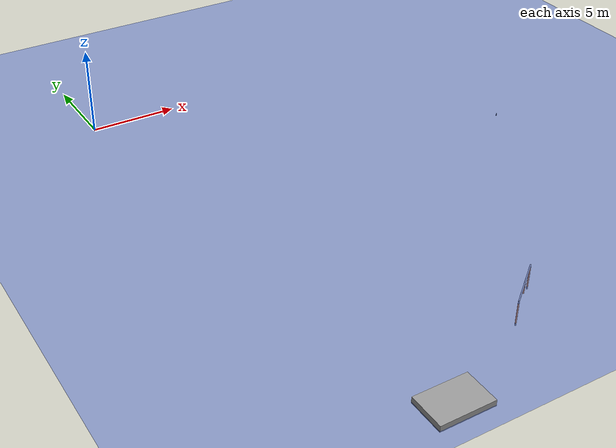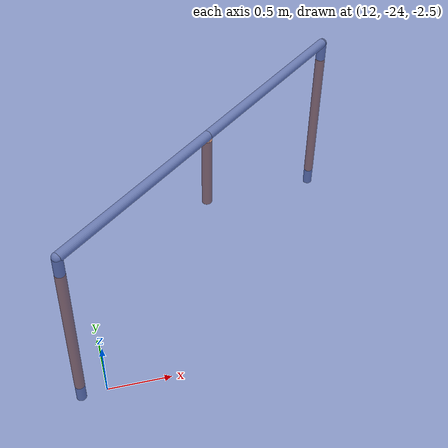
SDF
<sdf version="1.5">
 <world name="default">
  <scene>
   <ambient>0.25 0.3 1 1</ambient>
   <grid>0</grid>
   <background>0.25 0.3 1 1</background>
   <shadows>1</shadows>
  </scene>
  <light type="directional" name="sun0">
   <pose>8 -21 10 0 0.8 -2.8</pose>
   <diffuse>0.8 0.8 0.8 1</diffuse>
   <specular>0.2 0.2 0.2 1</specular>
   <attenuation>
    <range>1000</range>
    <constant>0.9</constant>
    <linear>0.01</linear>
    <quadratic>0.001</quadratic>
   </attenuation>
   <direction>-0.5 0.1 -0.9</direction>
  </light>
  <light type="directional" name="sun1">
   <pose>8 -20 10 0 0.8 0</pose>
   <diffuse>0.8 0.8 0.8 1</diffuse>
   <specular>0.2 0.2 0.2 1</specular>
   <attenuation>
    <range>1000</range>
    <constant>0.9</constant>
    <linear>0.01</linear>
    <quadratic>0.001</quadratic>
   </attenuation>
   <direction>-0.5 0.1 -0.9</direction>
  </light>
  <light type="directional" name="sun2">
   <pose>8 -19 10 0 0 0</pose>
   <diffuse>0.8 0.8 0.8 1</diffuse>
   <specular>0.2 0.2 0.2 1</specular>
   <attenuation>
    <range>1000</range>
    <constant>0.9</constant>
    <linear>0.01</linear>
    <quadratic>0.001</quadratic>
   </attenuation>
   <direction>-0.5 0.1 -0.9</direction>
  </light>
  <light type="directional" name="sun3">
   <pose>8 -19 10 1.75 0 0</pose>
   <diffuse>0.8 0.8 0.8 1</diffuse>
   <specular>0.2 0.2 0.2 1</specular>
   <attenuation>
    <range>1000</range>
    <constant>0.9</constant>
    <linear>0.01</linear>
    <quadratic>0.001</quadratic>
   </attenuation>
   <direction>-0.5 0.1 -0.9</direction>
  </light>
  <light type="directional" name="sun4">
   <pose>8 -19 10 1.75 0 2.9</pose>
   <diffuse>0.8 0.8 0.8 1</diffuse>
   <specular>0.2 0.2 0.2 1</specular>
   <attenuation>
    <range>1000</range>
    <constant>0.9</constant>
    <linear>0.01</linear>
    <quadratic>0.001</quadratic>
   </attenuation>
   <direction>-0.5 0.1 -0.9</direction>
  </light>
  <model name="ceiling_plane">
   <static>true</static>
   <pose>0 0 -0.8 0 0 0</pose>
   <link name="link">
    <visual name="visual">
     <cast_shadows>false</cast_shadows>
     <geometry><box><size>90 60 .001</size></box></geometry>
     <material>
      <script><uri>file://media/materials/scripts/gazebo.material</uri><name>Gazebo/BlueTransparent</name></script>
     </material>
     <transparency>0.6</transparency>
    </visual>
   </link>
  </model>
  <model name="dock_side_a">
   <static>true</static>
   <pose>4.8 -28.0 -0.67 0 0 0</pose>
   <link name="link">
    <collision name="collision"><geometry><box><size>3 2 0.35</size></box></geometry></collision>
    <visual name="visual">
     <geometry><box><size>3 2 0.35</size></box></geometry>
     <material>
      <script><uri>file://media/materials/scripts/gazebo.material</uri><name>Gazebo/Grey</name></script>
     </material>
    </visual>
   </link>
  </model>
  <model name="pinger_a">
   <static>true</static>
   <pose>27.6 -4.1 -4.9 0 0 0</pose>
   <link name="link">
    <visual name="visual">
     <geometry><cylinder><radius>0.03</radius><length>0.15</length></cylinder></geometry>
     <material>
      <script><uri>file://media/materials/scripts/gazebo.material</uri><name>Gazebo/FlatBlack</name></script>
     </material>
    </visual>
   </link>
  </model>
  <include><name>gate_side_a</name><pose>12.4 -23.6 -0.9 0 0 -0.9</pose><uri>model://2018/gate</uri></include>
 </world>
</sdf>

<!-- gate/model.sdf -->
<sdf version='1.6'>
  <model name='gate'>
    <link name='component_rt'>
      <inertial>
        <mass>10</mass>
        <inertia>
          <ixx>0.145833</ixx>
          <ixy>0</ixy>
          <ixz>0</ixz>
          <iyy>0.145833</iyy>
          <iyz>0</iyz>
          <izz>0.125</izz>
        </inertia>
        <pose>0 0 0 0 -0 0</pose>
      </inertial>
      <pose>0 1.52 -0.000146 1.5707 -0 0</pose>
      <self_collide>0</self_collide>
      <enable_wind>0</enable_wind>
      <kinematic>0</kinematic>
      <gravity>0</gravity>
      <visual name='visual'>
        <pose>0 0 0 0 -0 0</pose>
        <geometry>
          <cylinder>
            <radius>0.0381</radius>
            <length>1.52</length>
          </cylinder>
        </geometry>
        <material>
          <lighting>1</lighting>
          <script>
            <uri>file://media/materials/scripts/gazebo.material</uri>
            <name>Gazebo/Grey</name>
          </script>
          <shader type='pixel'/>
          <emissive>0 0 0 1</emissive>
        </material>
        <transparency>0</transparency>
        <cast_shadows>1</cast_shadows>
      </visual>
      <collision name='collision'>
        <laser_retro>0</laser_retro>
        <max_contacts>10</max_contacts>
        <pose>0 0 0 0 -0 0</pose>
        <geometry>
          <cylinder>
            <radius>0.0381</radius>
            <length>1.52</length>
          </cylinder>
        </geometry>
        <surface>
          <friction>
            <ode>
              <mu>1</mu>
              <mu2>1</mu2>
              <fdir1>0 0 0</fdir1>
              <slip1>0</slip1>
              <slip2>0</slip2>
            </ode>
            <torsional>
              <coefficient>1</coefficient>
              <patch_radius>0</patch_radius>
              <surface_radius>0</surface_radius>
              <use_patch_radius>1</use_patch_radius>
              <ode>
                <slip>0</slip>
              </ode>
            </torsional>
          </friction>
          <bounce>
            <restitution_coefficient>0</restitution_coefficient>
            <threshold>1e+06</threshold>
          </bounce>
          <contact>
            <collide_without_contact>0</collide_without_contact>
            <collide_without_contact_bitmask>1</collide_without_contact_bitmask>
            <collide_bitmask>1</collide_bitmask>
            <ode>
              <soft_cfm>0</soft_cfm>
              <soft_erp>0.2</soft_erp>
              <kp>1e+13</kp>
              <kd>1</kd>
              <max_vel>0.01</max_vel>
              <min_depth>0</min_depth>
            </ode>
            <bullet>
              <split_impulse>1</split_impulse>
              <split_impulse_penetration_threshold>-0.01</split_impulse_penetration_threshold>
              <soft_cfm>0</soft_cfm>
              <soft_erp>0.2</soft_erp>
              <kp>1e+13</kp>
              <kd>1</kd>
            </bullet>
          </contact>
        </surface>
      </collision>
    </link>
    <link name='component_lb'>
      <inertial>
        <mass>10</mass>
        <inertia>
          <ixx>0.145833</ixx>
          <ixy>0</ixy>
          <ixz>0</ixz>
          <iyy>0.145833</iyy>
          <iyz>0</iyz>
          <izz>0.125</izz>
        </inertia>
        <pose>0 0 0 0 -0 0</pose>
      </inertial>
      <pose>-0 -0.760073 -0.759927 0 -0 0</pose>
      <self_collide>0</self_collide>
      <enable_wind>0</enable_wind>
      <kinematic>0</kinematic>
      <gravity>0</gravity>
      <visual name='visual'>
        <pose>0 0 0 0 -0 0</pose>
        <geometry>
          <cylinder>
            <radius>0.0381</radius>
            <length>1.52</length>
          </cylinder>
        </geometry>
        <material>
          <lighting>1</lighting>
          <script>
            <uri>file://media/materials/scripts/gazebo.material</uri>
            <name>Gazebo/Grey</name>
          </script>
          <shader type='pixel'/>
          <emissive>0 0 0 1</emissive>
        </material>
        <transparency>0</transparency>
        <cast_shadows>1</cast_shadows>
      </visual>
      <collision name='collision'>
        <laser_retro>0</laser_retro>
        <max_contacts>10</max_contacts>
        <pose>0 0 0 0 -0 0</pose>
        <geometry>
          <cylinder>
            <radius>0.0381</radius>
            <length>1.52</length>
          </cylinder>
        </geometry>
        <surface>
          <friction>
            <ode>
              <mu>1</mu>
              <mu2>1</mu2>
              <fdir1>0 0 0</fdir1>
              <slip1>0</slip1>
              <slip2>0</slip2>
            </ode>
            <torsional>
              <coefficient>1</coefficient>
              <patch_radius>0</patch_radius>
              <surface_radius>0</surface_radius>
              <use_patch_radius>1</use_patch_radius>
              <ode>
                <slip>0</slip>
              </ode>
            </torsional>
          </friction>
          <bounce>
            <restitution_coefficient>0</restitution_coefficient>
            <threshold>1e+06</threshold>
          </bounce>
          <contact>
            <collide_without_contact>0</collide_without_contact>
            <collide_without_contact_bitmask>1</collide_without_contact_bitmask>
            <collide_bitmask>1</collide_bitmask>
            <ode>
              <soft_cfm>0</soft_cfm>
              <soft_erp>0.2</soft_erp>
              <kp>1e+13</kp>
              <kd>1</kd>
              <max_vel>0.01</max_vel>
              <min_depth>0</min_depth>
            </ode>
            <bullet>
              <split_impulse>1</split_impulse>
              <split_impulse_penetration_threshold>-0.01</split_impulse_penetration_threshold>
              <soft_cfm>0</soft_cfm>
              <soft_erp>0.2</soft_erp>
              <kp>1e+13</kp>
              <kd>1</kd>
            </bullet>
          </contact>
        </surface>
      </collision>
    </link>
    <link name='component_lt'>
      <inertial>
        <mass>10</mass>
        <inertia>
          <ixx>0.145833</ixx>
          <ixy>0</ixy>
          <ixz>0</ixz>
          <iyy>0.145833</iyy>
          <iyz>0</iyz>
          <izz>0.125</izz>
        </inertia>
        <pose>0 0 0 0 -0 0</pose>
      </inertial>
      <pose>0 0 0 1.5707 -0 0</pose>
      <self_collide>0</self_collide>
      <enable_wind>0</enable_wind>
      <kinematic>0</kinematic>
      <gravity>0</gravity>
      <visual name='visual'>
        <pose>0 0 0 0 -0 0</pose>
        <geometry>
          <cylinder>
            <radius>0.0381</radius>
            <length>1.52</length>
          </cylinder>
        </geometry>
        <material>
          <lighting>1</lighting>
          <script>
            <uri>file://media/materials/scripts/gazebo.material</uri>
            <name>Gazebo/Grey</name>
          </script>
          <shader type='pixel'/>
          <emissive>0 0 0 1</emissive>
        </material>
        <transparency>0</transparency>
        <cast_shadows>1</cast_shadows>
      </visual>
      <collision name='collision'>
        <laser_retro>0</laser_retro>
        <max_contacts>10</max_contacts>
        <pose>0 0 0 0 -0 0</pose>
        <geometry>
          <cylinder>
            <radius>0.0381</radius>
            <length>1.52</length>
          </cylinder>
        </geometry>
        <surface>
          <friction>
            <ode>
              <mu>1</mu>
              <mu2>1</mu2>
              <fdir1>0 0 0</fdir1>
              <slip1>0</slip1>
              <slip2>0</slip2>
            </ode>
            <torsional>
              <coefficient>1</coefficient>
              <patch_radius>0</patch_radius>
              <surface_radius>0</surface_radius>
              <use_patch_radius>1</use_patch_radius>
              <ode>
                <slip>0</slip>
              </ode>
            </torsional>
          </friction>
          <bounce>
            <restitution_coefficient>0</restitution_coefficient>
            <threshold>1e+06</threshold>
          </bounce>
          <contact>
            <collide_without_contact>0</collide_without_contact>
            <collide_without_contact_bitmask>1</collide_without_contact_bitmask>
            <collide_bitmask>1</collide_bitmask>
            <ode>
              <soft_cfm>0</soft_cfm>
              <soft_erp>0.2</soft_erp>
              <kp>1e+13</kp>
              <kd>1</kd>
              <max_vel>0.01</max_vel>
              <min_depth>0</min_depth>
            </ode>
            <bullet>
              <split_impulse>1</split_impulse>
              <split_impulse_penetration_threshold>-0.01</split_impulse_penetration_threshold>
              <soft_cfm>0</soft_cfm>
              <soft_erp>0.2</soft_erp>
              <kp>1e+13</kp>
              <kd>1</kd>
            </bullet>
          </contact>
        </surface>
      </collision>
    </link>
    <link name='component_rb'>
      <inertial>
        <mass>10</mass>
        <inertia>
          <ixx>0.145833</ixx>
          <ixy>0</ixy>
          <ixz>0</ixz>
          <iyy>0.145833</iyy>
          <iyz>0</iyz>
          <izz>0.125</izz>
        </inertia>
        <pose>0 0 0 0 -0 0</pose>
      </inertial>
      <pose>0 2.27993 -0.76022 0 -0 0</pose>
      <self_collide>0</self_collide>
      <enable_wind>0</enable_wind>
      <kinematic>0</kinematic>
      <gravity>0</gravity>
      <visual name='visual'>
        <pose>0 0 0 0 -0 0</pose>
        <geometry>
          <cylinder>
            <radius>0.0381</radius>
            <length>1.52</length>
          </cylinder>
        </geometry>
        <material>
          <lighting>1</lighting>
          <script>
            <uri>file://media/materials/scripts/gazebo.material</uri>
            <name>Gazebo/Grey</name>
          </script>
          <shader type='pixel'/>
          <emissive>0 0 0 1</emissive>
        </material>
        <transparency>0</transparency>
        <cast_shadows>1</cast_shadows>
      </visual>
      <collision name='collision'>
        <laser_retro>0</laser_retro>
        <max_contacts>10</max_contacts>
        <pose>0 0 0 0 -0 0</pose>
        <geometry>
          <cylinder>
            <radius>0.0381</radius>
            <length>1.52</length>
          </cylinder>
        </geometry>
        <surface>
          <friction>
            <ode>
              <mu>1</mu>
              <mu2>1</mu2>
              <fdir1>0 0 0</fdir1>
              <slip1>0</slip1>
              <slip2>0</slip2>
            </ode>
            <torsional>
              <coefficient>1</coefficient>
              <patch_radius>0</patch_radius>
              <surface_radius>0</surface_radius>
              <use_patch_radius>1</use_patch_radius>
              <ode>
                <slip>0</slip>
              </ode>
            </torsional>
          </friction>
          <bounce>
            <restitution_coefficient>0</restitution_coefficient>
            <threshold>1e+06</threshold>
          </bounce>
          <contact>
            <collide_without_contact>0</collide_without_contact>
            <collide_without_contact_bitmask>1</collide_without_contact_bitmask>
            <collide_bitmask>1</collide_bitmask>
            <ode>
              <soft_cfm>0</soft_cfm>
              <soft_erp>0.2</soft_erp>
              <kp>1e+13</kp>
              <kd>1</kd>
              <max_vel>0.01</max_vel>
              <min_depth>0</min_depth>
            </ode>
            <bullet>
              <split_impulse>1</split_impulse>
              <split_impulse_penetration_threshold>-0.01</split_impulse_penetration_threshold>
              <soft_cfm>0</soft_cfm>
              <soft_erp>0.2</soft_erp>
              <kp>1e+13</kp>
              <kd>1</kd>
            </bullet>
          </contact>
        </surface>
      </collision>
    </link>
    <link name='corner_l'>
      <inertial>
        <mass>1</mass>
        <inertia>
          <ixx>0.1</ixx>
          <ixy>0</ixy>
          <ixz>0</ixz>
          <iyy>0.1</iyy>
          <iyz>0</iyz>
          <izz>0.1</izz>
        </inertia>
        <pose>0 0 0 0 -0 0</pose>
      </inertial>
      <pose>-0 2.28 -0.000219 1.5707 -0 0</pose>
      <gravity>0</gravity>
      <self_collide>0</self_collide>
      <kinematic>0</kinematic>
      <enable_wind>0</enable_wind>
      <visual name='visual'>
        <pose>0 0 0 0 -0 0</pose>
        <geometry>
          <sphere>
            <radius>0.038</radius>
          </sphere>
        </geometry>
        <material>
          <lighting>1</lighting>
          <script>
            <uri>file://media/materials/scripts/gazebo.material</uri>
            <name>Gazebo/Grey</name>
          </script>
          <shader type='pixel'/>
          <emissive>0 0 0 1</emissive>
        </material>
        <transparency>0</transparency>
        <cast_shadows>1</cast_shadows>
      </visual>
      <collision name='collision'>
        <laser_retro>0</laser_retro>
        <max_contacts>10</max_contacts>
        <pose>0 0 0 0 -0 0</pose>
        <geometry>
          <sphere>
            <radius>0.0381</radius>
          </sphere>
        </geometry>
        <surface>
          <friction>
            <ode>
              <mu>1</mu>
              <mu2>1</mu2>
              <fdir1>0 0 0</fdir1>
              <slip1>0</slip1>
              <slip2>0</slip2>
            </ode>
            <torsional>
              <coefficient>1</coefficient>
              <patch_radius>0</patch_radius>
              <surface_radius>0</surface_radius>
              <use_patch_radius>1</use_patch_radius>
              <ode>
                <slip>0</slip>
              </ode>
            </torsional>
          </friction>
          <bounce>
            <restitution_coefficient>0</restitution_coefficient>
            <threshold>1e+06</threshold>
          </bounce>
          <contact>
            <collide_without_contact>0</collide_without_contact>
            <collide_without_contact_bitmask>1</collide_without_contact_bitmask>
            <collide_bitmask>1</collide_bitmask>
            <ode>
              <soft_cfm>0</soft_cfm>
              <soft_erp>0.2</soft_erp>
              <kp>1e+13</kp>
              <kd>1</kd>
              <max_vel>0.01</max_vel>
              <min_depth>0</min_depth>
            </ode>
            <bullet>
              <split_impulse>1</split_impulse>
              <split_impulse_penetration_threshold>-0.01</split_impulse_penetration_threshold>
              <soft_cfm>0</soft_cfm>
              <soft_erp>0.2</soft_erp>
              <kp>1e+13</kp>
              <kd>1</kd>
            </bullet>
          </contact>
        </surface>
      </collision>
    </link>
    <link name='corner_r'>
      <inertial>
        <mass>1</mass>
        <inertia>
          <ixx>0.1</ixx>
          <ixy>0</ixy>
          <ixz>0</ixz>
          <iyy>0.1</iyy>
          <iyz>0</iyz>
          <izz>0.1</izz>
        </inertia>
        <pose>0 0 0 0 -0 0</pose>
      </inertial>
      <pose>0 -0.76 -0 0 -0 0</pose>
      <gravity>0</gravity>
      <self_collide>0</self_collide>
      <kinematic>0</kinematic>
      <enable_wind>0</enable_wind>
      <visual name='visual'>
        <pose>0 0 0 0 -0 0</pose>
        <geometry>
          <sphere>
            <radius>0.038</radius>
          </sphere>
        </geometry>
        <material>
          <lighting>1</lighting>
          <script>
            <uri>file://media/materials/scripts/gazebo.material</uri>
            <name>Gazebo/Grey</name>
          </script>
          <shader type='pixel'/>
          <emissive>0 0 0 1</emissive>
        </material>
        <transparency>0</transparency>
        <cast_shadows>1</cast_shadows>
      </visual>
      <collision name='collision'>
        <laser_retro>0</laser_retro>
        <max_contacts>10</max_contacts>
        <pose>0 0 0 0 -0 0</pose>
        <geometry>
          <sphere>
            <radius>0.0381</radius>
          </sphere>
        </geometry>
        <surface>
          <friction>
            <ode>
              <mu>1</mu>
              <mu2>1</mu2>
              <fdir1>0 0 0</fdir1>
              <slip1>0</slip1>
              <slip2>0</slip2>
            </ode>
            <torsional>
              <coefficient>1</coefficient>
              <patch_radius>0</patch_radius>
              <surface_radius>0</surface_radius>
              <use_patch_radius>1</use_patch_radius>
              <ode>
                <slip>0</slip>
              </ode>
            </torsional>
          </friction>
          <bounce>
            <restitution_coefficient>0</restitution_coefficient>
            <threshold>1e+06</threshold>
          </bounce>
          <contact>
            <collide_without_contact>0</collide_without_contact>
            <collide_without_contact_bitmask>1</collide_without_contact_bitmask>
            <collide_bitmask>1</collide_bitmask>
            <ode>
              <soft_cfm>0</soft_cfm>
              <soft_erp>0.2</soft_erp>
              <kp>1e+13</kp>
              <kd>1</kd>
              <max_vel>0.01</max_vel>
              <min_depth>0</min_depth>
            </ode>
            <bullet>
              <split_impulse>1</split_impulse>
              <split_impulse_penetration_threshold>-0.01</split_impulse_penetration_threshold>
              <soft_cfm>0</soft_cfm>
              <soft_erp>0.2</soft_erp>
              <kp>1e+13</kp>
              <kd>1</kd>
            </bullet>
          </contact>
        </surface>
      </collision>
    </link>
    <link name='jacket_l'>
      <inertial>
        <mass>10</mass>
        <inertia>
          <ixx>0.145833</ixx>
          <ixy>0</ixy>
          <ixz>0</ixz>
          <iyy>0.145833</iyy>
          <iyz>0</iyz>
          <izz>0.125</izz>
        </inertia>
        <pose>0 0 0 0 -0 0</pose>
      </inertial>
      <pose>-0 -0.760073 -0.759927 0 -0 0</pose>
      <self_collide>0</self_collide>
      <enable_wind>0</enable_wind>
      <kinematic>0</kinematic>
      <gravity>0</gravity>
      <visual name='visual'>
        <pose>0 0 0 0 -0 0</pose>
        <geometry>
          <cylinder>
            <radius>0.039</radius>
            <length>1.219</length>
          </cylinder>
        </geometry>
        <material>
          <lighting>1</lighting>
          <script>
            <uri>file://media/materials/scripts/gazebo.material</uri>
            <name>Gazebo/Orange</name>
          </script>
          <shader type='pixel'/>
          <emissive>0 0 0 1</emissive>
        </material>
        <transparency>0</transparency>
        <cast_shadows>1</cast_shadows>
      </visual>
      <collision name='collision'>
        <laser_retro>0</laser_retro>
        <max_contacts>10</max_contacts>
        <pose>0 0 0 0 -0 0</pose>
        <geometry>
          <cylinder>
            <radius>0</radius>
            <length>0</length>
          </cylinder>
        </geometry>
        <surface>
          <friction>
            <ode>
              <mu>1</mu>
              <mu2>1</mu2>
              <fdir1>0 0 0</fdir1>
              <slip1>0</slip1>
              <slip2>0</slip2>
            </ode>
            <torsional>
              <coefficient>1</coefficient>
              <patch_radius>0</patch_radius>
              <surface_radius>0</surface_radius>
              <use_patch_radius>1</use_patch_radius>
              <ode>
                <slip>0</slip>
              </ode>
            </torsional>
          </friction>
          <bounce>
            <restitution_coefficient>0</restitution_coefficient>
            <threshold>1e+06</threshold>
          </bounce>
          <contact>
            <collide_without_contact>0</collide_without_contact>
            <collide_without_contact_bitmask>1</collide_without_contact_bitmask>
            <collide_bitmask>1</collide_bitmask>
            <ode>
              <soft_cfm>0</soft_cfm>
              <soft_erp>0.2</soft_erp>
              <kp>1e+13</kp>
              <kd>1</kd>
              <max_vel>0.01</max_vel>
              <min_depth>0</min_depth>
            </ode>
            <bullet>
              <split_impulse>1</split_impulse>
              <split_impulse_penetration_threshold>-0.01</split_impulse_penetration_threshold>
              <soft_cfm>0</soft_cfm>
              <soft_erp>0.2</soft_erp>
              <kp>1e+13</kp>
              <kd>1</kd>
            </bullet>
          </contact>
        </surface>
      </collision>
    </link>
    <link name='jacket_r'>
      <inertial>
        <mass>1</mass>
        <inertia>
          <ixx>0.145833</ixx>
          <ixy>0</ixy>
          <ixz>0</ixz>
          <iyy>0.145833</iyy>
          <iyz>0</iyz>
          <izz>0.125</izz>
        </inertia>
        <pose>0 0 0 0 -0 0</pose>
      </inertial>
      <pose>0 2.27993 -0.76022 0 -0 0</pose>
      <self_collide>0</self_collide>
      <enable_wind>0</enable_wind>
      <kinematic>0</kinematic>
      <gravity>0</gravity>
      <visual name='visual'>
        <pose>0 0 0 0 -0 0</pose>
        <geometry>
          <cylinder>
            <radius>0.039</radius>
            <length>1.219</length>
          </cylinder>
        </geometry>
        <material>
          <lighting>1</lighting>
          <script>
            <uri>file://media/materials/scripts/gazebo.material</uri>
            <name>Gazebo/Orange</name>
          </script>
          <shader type='pixel'/>
          <emissive>0 0 0 1</emissive>
        </material>
        <transparency>0</transparency>
        <cast_shadows>1</cast_shadows>
      </visual>
      <collision name='collision'>
        <laser_retro>0</laser_retro>
        <max_contacts>10</max_contacts>
        <pose>0 0 0 0 -0 0</pose>
        <geometry>
          <cylinder>
            <radius>0</radius>
            <length>0</length>
          </cylinder>
        </geometry>
        <surface>
          <friction>
            <ode>
              <mu>1</mu>
              <mu2>1</mu2>
              <fdir1>0 0 0</fdir1>
              <slip1>0</slip1>
              <slip2>0</slip2>
            </ode>
            <torsional>
              <coefficient>1</coefficient>
              <patch_radius>0</patch_radius>
              <surface_radius>0</surface_radius>
              <use_patch_radius>1</use_patch_radius>
              <ode>
                <slip>0</slip>
              </ode>
            </torsional>
          </friction>
          <bounce>
            <restitution_coefficient>0</restitution_coefficient>
            <threshold>1e+06</threshold>
          </bounce>
          <contact>
            <collide_without_contact>0</collide_without_contact>
            <collide_without_contact_bitmask>1</collide_without_contact_bitmask>
            <collide_bitmask>1</collide_bitmask>
            <ode>
              <soft_cfm>0</soft_cfm>
              <soft_erp>0.2</soft_erp>
              <kp>1e+13</kp>
              <kd>1</kd>
              <max_vel>0.01</max_vel>
              <min_depth>0</min_depth>
            </ode>
            <bullet>
              <split_impulse>1</split_impulse>
              <split_impulse_penetration_threshold>-0.01</split_impulse_penetration_threshold>
              <soft_cfm>0</soft_cfm>
              <soft_erp>0.2</soft_erp>
              <kp>1e+13</kp>
              <kd>1</kd>
            </bullet>
          </contact>
        </surface>
      </collision>
    </link>
    <link name='center_link'>
      <inertial>
        <mass>1</mass>
        <inertia>
          <ixx>0.145833</ixx>
          <ixy>0</ixy>
          <ixz>0</ixz>
          <iyy>0.145833</iyy>
          <iyz>0</iyz>
          <izz>0.125</izz>
        </inertia>
        <pose>0 0 0 0 -0 0</pose>
      </inertial>
      <pose>-0 0.75 -0.340029 3.1414 -0 0</pose>
      <gravity>0</gravity>
      <self_collide>0</self_collide>
      <kinematic>0</kinematic>
      <enable_wind>0</enable_wind>
      <visual name='visual'>
        <pose>0 0 0 0 -0 0</pose>
        <geometry>
          <cylinder>
            <radius>0.03</radius>
            <length>0.6096</length>
          </cylinder>
        </geometry>
        <material>
        <material>
          <lighting>1</lighting>
          <script>
            <uri>file://media/materials/scripts/gazebo.material</uri>
            <name>Gazebo/Orange</name>
          </script>
          <shader type='pixel'/>
          <emissive>0 0 0 1</emissive>
        </material>
        </material>
        <transparency>0</transparency>
        <cast_shadows>1</cast_shadows>
      </visual>
      <collision name='collision'>
        <laser_retro>0</laser_retro>
        <max_contacts>10</max_contacts>
        <pose>0 0 0 0 -0 0</pose>
        <geometry>
          <cylinder>
            <radius>0.03</radius>
            <length>0.6096</length>
          </cylinder>
        </geometry>
        <surface>
          <friction>
            <ode>
              <mu>1</mu>
              <mu2>1</mu2>
              <fdir1>0 0 0</fdir1>
              <slip1>0</slip1>
              <slip2>0</slip2>
            </ode>
            <torsional>
              <coefficient>1</coefficient>
              <patch_radius>0</patch_radius>
              <surface_radius>0</surface_radius>
              <use_patch_radius>1</use_patch_radius>
              <ode>
                <slip>0</slip>
              </ode>
            </torsional>
          </friction>
          <bounce>
            <restitution_coefficient>0</restitution_coefficient>
            <threshold>1e+06</threshold>
          </bounce>
          <contact>
            <collide_without_contact>0</collide_without_contact>
            <collide_without_contact_bitmask>1</collide_without_contact_bitmask>
            <collide_bitmask>1</collide_bitmask>
            <ode>
              <soft_cfm>0</soft_cfm>
              <soft_erp>0.2</soft_erp>
              <kp>1e+13</kp>
              <kd>1</kd>
              <max_vel>0.01</max_vel>
              <min_depth>0</min_depth>
            </ode>
            <bullet>
              <split_impulse>1</split_impulse>
              <split_impulse_penetration_threshold>-0.01</split_impulse_penetration_threshold>
              <soft_cfm>0</soft_cfm>
              <soft_erp>0.2</soft_erp>
              <kp>1e+13</kp>
              <kd>1</kd>
            </bullet>
          </contact>
        </surface>
      </collision>
    </link>
    <link name='jacket_c'>
      <inertial>
        <mass>10</mass>
        <inertia>
          <ixx>0.145833</ixx>
          <ixy>0</ixy>
          <ixz>0</ixz>
          <iyy>0.145833</iyy>
          <iyz>0</iyz>
          <izz>0.125</izz>
        </inertia>
        <pose>0 0 0 0 -0 0</pose>
      </inertial>
      <pose>-0 0.75 -0.340029 3.1414 -0 0</pose>
      <self_collide>0</self_collide>
      <enable_wind>0</enable_wind>
      <kinematic>0</kinematic>
      <gravity>0</gravity>
      <visual name='visual'>
        <pose>0 0 0 0 -0 0</pose>
        <geometry>
          <cylinder>
            <radius>0.039</radius>
            <length>0.6096</length>
          </cylinder>
        </geometry>
        <material>
          <lighting>1</lighting>
          <script>
            <uri>file://media/materials/scripts/gazebo.material</uri>
            <name>Gazebo/Orange</name>
          </script>
          <shader type='pixel'/>
          <emissive>0 0 0 1</emissive>
        </material>
        <transparency>0</transparency>
        <cast_shadows>1</cast_shadows>
      </visual>
      <collision name='collision'>
        <laser_retro>0</laser_retro>
        <max_contacts>10</max_contacts>
        <pose>0 0 0 0 -0 0</pose>
        <geometry>
          <cylinder>
            <radius>0</radius>
            <length>0</length>
          </cylinder>
        </geometry>
        <surface>
          <friction>
            <ode>
              <mu>1</mu>
              <mu2>1</mu2>
              <fdir1>0 0 0</fdir1>
              <slip1>0</slip1>
              <slip2>0</slip2>
            </ode>
            <torsional>
              <coefficient>1</coefficient>
              <patch_radius>0</patch_radius>
              <surface_radius>0</surface_radius>
              <use_patch_radius>1</use_patch_radius>
              <ode>
                <slip>0</slip>
              </ode>
            </torsional>
          </friction>
          <bounce>
            <restitution_coefficient>0</restitution_coefficient>
            <threshold>1e+06</threshold>
          </bounce>
          <contact>
            <collide_without_contact>0</collide_without_contact>
            <collide_without_contact_bitmask>1</collide_without_contact_bitmask>
            <collide_bitmask>1</collide_bitmask>
            <ode>
              <soft_cfm>0</soft_cfm>
              <soft_erp>0.2</soft_erp>
              <kp>1e+13</kp>
              <kd>1</kd>
              <max_vel>0.01</max_vel>
              <min_depth>0</min_depth>
            </ode>
            <bullet>
              <split_impulse>1</split_impulse>
              <split_impulse_penetration_threshold>-0.01</split_impulse_penetration_threshold>
              <soft_cfm>0</soft_cfm>
              <soft_erp>0.2</soft_erp>
              <kp>1e+13</kp>
              <kd>1</kd>
            </bullet>
          </contact>
        </surface>
      </collision>
    </link>
    <joint name='center_joint' type='fixed'>
      <parent>component_lt</parent>
      <child>center_link</child>
      <pose>0 0 0 0 -0 0</pose>
      <physics>
        <ode>
          <limit>
            <cfm>0</cfm>
            <erp>0.2</erp>
          </limit>
          <suspension>
            <cfm>0</cfm>
            <erp>0.2</erp>
          </suspension>
        </ode>
      </physics>
    </joint>
    <joint name='component_lt_lb' type='fixed'>
      <parent>component_lt</parent>
      <child>component_lb</child>
      <pose>0 0 0 0 -0 0</pose>
      <physics>
        <ode>
          <limit>
            <cfm>0</cfm>
            <erp>0.2</erp>
          </limit>
          <suspension>
            <cfm>0</cfm>
            <erp>0.2</erp>
          </suspension>
        </ode>
      </physics>
    </joint>
    <joint name='component_lt_rt' type='fixed'>
      <parent>component_lt</parent>
      <child>component_rt</child>
      <pose>0 0 0 0 -0 0</pose>
      <physics>
        <ode>
          <limit>
            <cfm>0</cfm>
            <erp>0.2</erp>
          </limit>
          <suspension>
            <cfm>0</cfm>
            <erp>0.2</erp>
          </suspension>
        </ode>
      </physics>
    </joint>
    <joint name='component_rt_rb' type='fixed'>
      <parent>component_rt</parent>
      <child>component_rb</child>
      <pose>0 0 0 0 -0 0</pose>
      <physics>
        <ode>
          <limit>
            <cfm>0</cfm>
            <erp>0.2</erp>
          </limit>
          <suspension>
            <cfm>0</cfm>
            <erp>0.2</erp>
          </suspension>
        </ode>
      </physics>
    </joint>
    <joint name='corner_joint_l' type='fixed'>
      <parent>component_lt</parent>
      <child>corner_l</child>
      <pose>0 0 0 0 -0 0</pose>
      <physics>
        <ode>
          <limit>
            <cfm>0</cfm>
            <erp>0.2</erp>
          </limit>
          <suspension>
            <cfm>0</cfm>
            <erp>0.2</erp>
          </suspension>
        </ode>
      </physics>
    </joint>
    <joint name='corner_joint_r' type='fixed'>
      <parent>component_rt</parent>
      <child>corner_r</child>
      <pose>0 0 0 0 -0 0</pose>
      <physics>
        <ode>
          <limit>
            <cfm>0</cfm>
            <erp>0.2</erp>
          </limit>
          <suspension>
            <cfm>0</cfm>
            <erp>0.2</erp>
          </suspension>
        </ode>
      </physics>
    </joint>
    <joint name='jacket_joint_l' type='fixed'>
      <parent>component_lb</parent>
      <child>jacket_l</child>
      <pose>0 0 0 0 -0 0</pose>
      <physics>
        <ode>
          <limit>
            <cfm>0</cfm>
            <erp>0.2</erp>
          </limit>
          <suspension>
            <cfm>0</cfm>
            <erp>0.2</erp>
          </suspension>
        </ode>
      </physics>
    </joint>
    <joint name='jacket_joint_r' type='fixed'>
      <parent>component_rb</parent>
      <child>jacket_r</child>
      <pose>0 0 0 0 -0 0</pose>
      <physics>
        <ode>
          <limit>
            <cfm>0</cfm>
            <erp>0.2</erp>
          </limit>
          <suspension>
            <cfm>0</cfm>
            <erp>0.2</erp>
          </suspension>
        </ode>
      </physics>
    </joint>
    <static>1</static>
    <allow_auto_disable>1</allow_auto_disable>
  </model>
</sdf>
